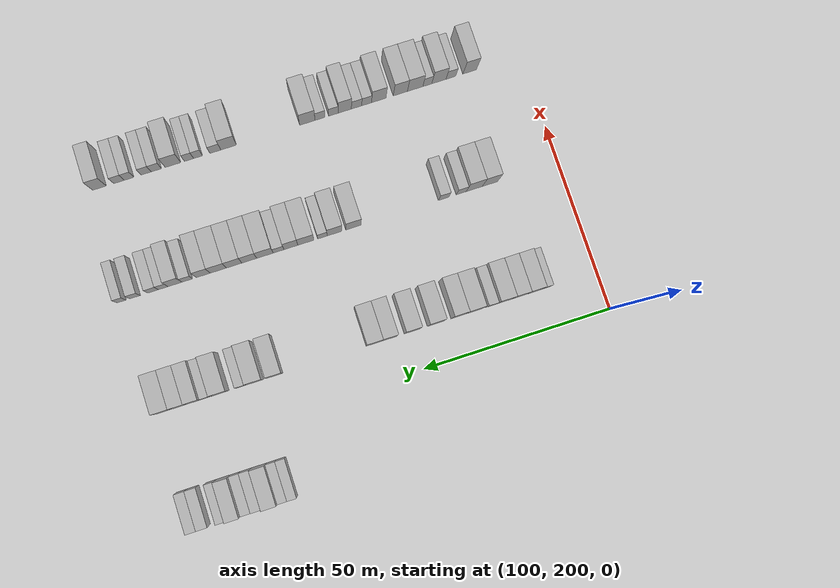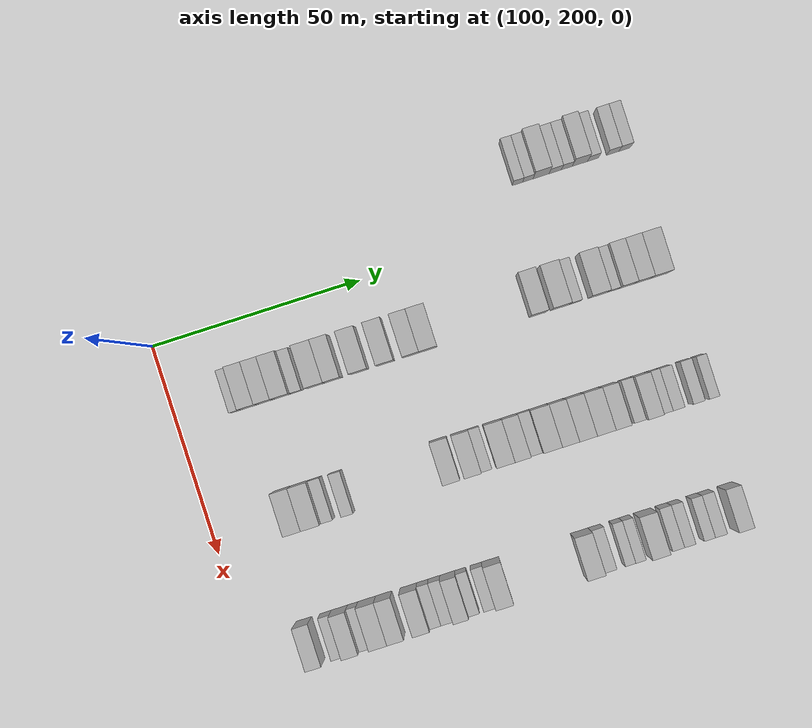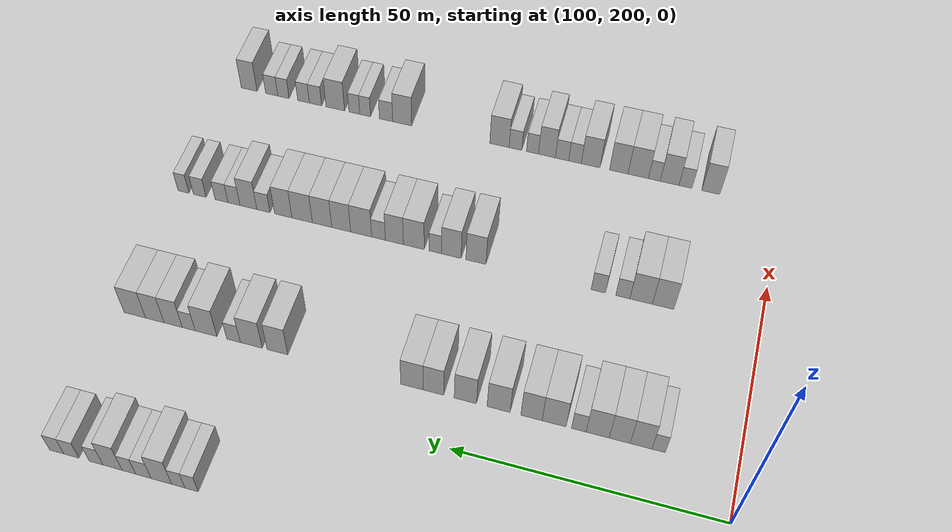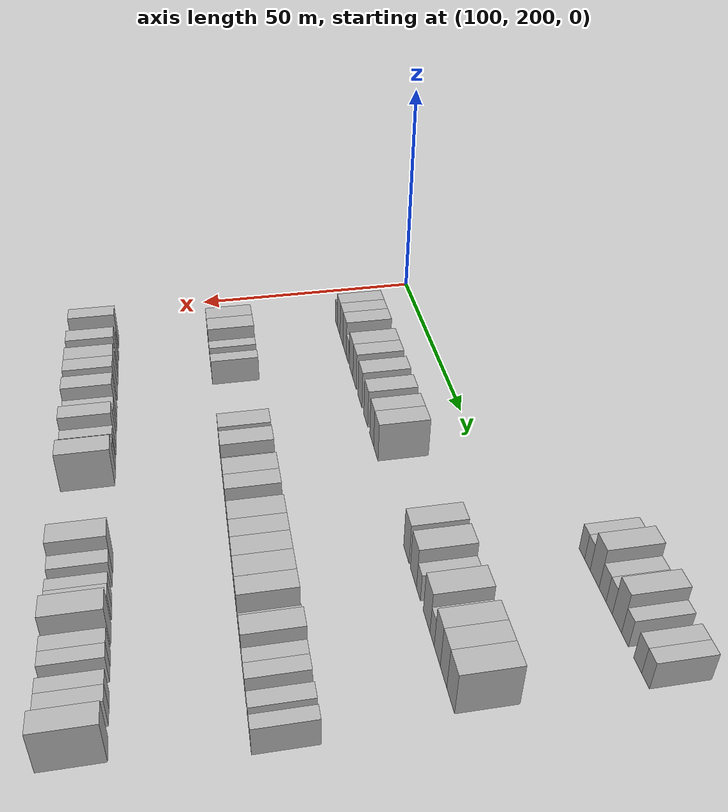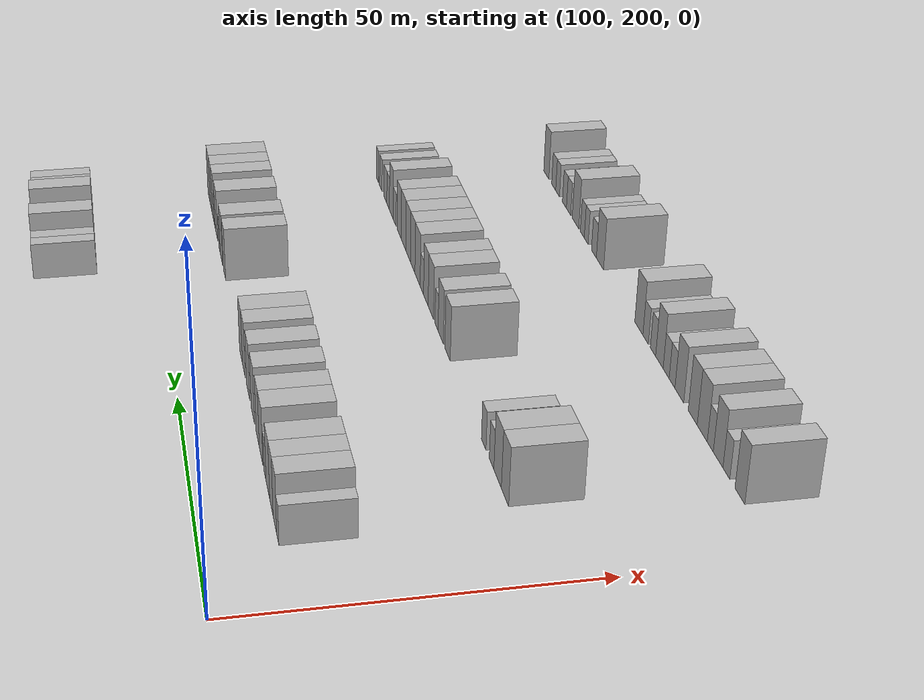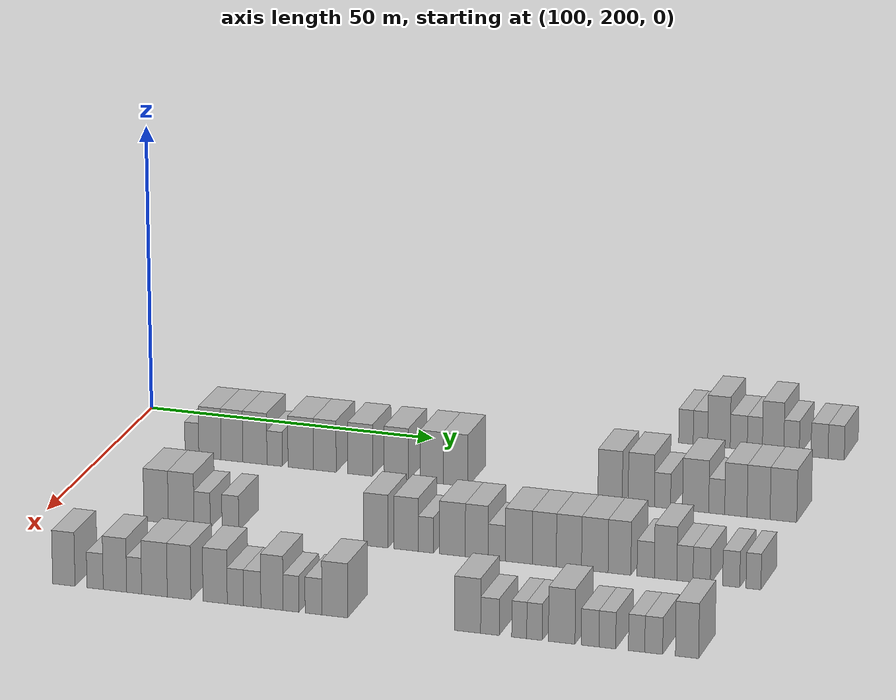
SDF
<sdf version="1.6">
 <world name="default">
  <model name="building_658">
   <static>1</static>
   <pose>85.0000 291.0946 0 0.000000 0.000000 0.000000</pose>
   <link name="link">
    <pose>0 0 3.00 0 0 0</pose>
    <collision name="collision"><geometry><box><size>10.0000 2.4968 6.0000</size></box></geometry></collision>
    <visual name="visual">
     <cast_shadows>0</cast_shadows>
     <geometry><box><size>10.0000 2.4968 6.0000</size></box></geometry>
     <material>
      <script>
       <uri>model://HANNAS_wall/materials/scripts</uri>
       <uri>model://HANNAS_wall/materials/textures</uri>
       <name>vrc/HANNAS_wall</name>
      </script>
     </material>
    </visual>
   </link>
  </model>
  <model name="building_659">
   <static>1</static>
   <pose>85.0000 293.5896 0 0.000000 0.000000 0.000000</pose>
   <link name="link">
    <pose>0 0 3.00 0 0 0</pose>
    <collision name="collision"><geometry><box><size>10.0000 2.4931 6.0000</size></box></geometry></collision>
    <visual name="visual">
     <cast_shadows>0</cast_shadows>
     <geometry><box><size>10.0000 2.4931 6.0000</size></box></geometry>
     <material>
      <script>
       <uri>model://HANNAS_wall/materials/scripts</uri>
       <uri>model://HANNAS_wall/materials/textures</uri>
       <name>vrc/HANNAS_wall</name>
      </script>
     </material>
    </visual>
   </link>
  </model>
  <model name="building_660">
   <static>1</static>
   <pose>85.0000 296.7769 0 0.000000 0.000000 0.000000</pose>
   <link name="link">
    <pose>0 0 4.50 0 0 0</pose>
    <collision name="collision"><geometry><box><size>10.0000 3.8815 9.0000</size></box></geometry></collision>
    <visual name="visual">
     <cast_shadows>0</cast_shadows>
     <geometry><box><size>10.0000 3.8815 9.0000</size></box></geometry>
     <material>
      <script>
       <uri>model://HANNAS_wall/materials/scripts</uri>
       <uri>model://HANNAS_wall/materials/textures</uri>
       <name>vrc/HANNAS_wall</name>
      </script>
     </material>
    </visual>
   </link>
  </model>
  <model name="building_661">
   <static>1</static>
   <pose>85.0000 300.1821 0 0.000000 0.000000 0.000000</pose>
   <link name="link">
    <pose>0 0 3.00 0 0 0</pose>
    <collision name="collision"><geometry><box><size>10.0000 2.9287 6.0000</size></box></geometry></collision>
    <visual name="visual">
     <cast_shadows>0</cast_shadows>
     <geometry><box><size>10.0000 2.9287 6.0000</size></box></geometry>
     <material>
      <script>
       <uri>model://HANNAS_wall/materials/scripts</uri>
       <uri>model://HANNAS_wall/materials/textures</uri>
       <name>vrc/HANNAS_wall</name>
      </script>
     </material>
    </visual>
   </link>
  </model>
  <model name="building_662">
   <static>1</static>
   <pose>85.0000 302.9438 0 0.000000 0.000000 0.000000</pose>
   <link name="link">
    <pose>0 0 3.00 0 0 0</pose>
    <collision name="collision"><geometry><box><size>10.0000 2.5949 6.0000</size></box></geometry></collision>
    <visual name="visual">
     <cast_shadows>0</cast_shadows>
     <geometry><box><size>10.0000 2.5949 6.0000</size></box></geometry>
     <material>
      <script>
       <uri>model://HANNAS_wall/materials/scripts</uri>
       <uri>model://HANNAS_wall/materials/textures</uri>
       <name>vrc/HANNAS_wall</name>
      </script>
     </material>
    </visual>
   </link>
  </model>
  <model name="building_663">
   <static>1</static>
   <pose>85.0000 306.0776 0 0.000000 0.000000 0.000000</pose>
   <link name="link">
    <pose>0 0 4.50 0 0 0</pose>
    <collision name="collision"><geometry><box><size>10.0000 3.6726 9.0000</size></box></geometry></collision>
    <visual name="visual">
     <cast_shadows>0</cast_shadows>
     <geometry><box><size>10.0000 3.6726 9.0000</size></box></geometry>
     <material>
      <script>
       <uri>model://HANNAS_wall/materials/scripts</uri>
       <uri>model://HANNAS_wall/materials/textures</uri>
       <name>vrc/HANNAS_wall</name>
      </script>
     </material>
    </visual>
   </link>
  </model>
  <model name="building_664">
   <static>1</static>
   <pose>85.0000 309.2364 0 0.000000 0.000000 0.000000</pose>
   <link name="link">
    <pose>0 0 3.00 0 0 0</pose>
    <collision name="collision"><geometry><box><size>10.0000 2.6450 6.0000</size></box></geometry></collision>
    <visual name="visual">
     <cast_shadows>0</cast_shadows>
     <geometry><box><size>10.0000 2.6450 6.0000</size></box></geometry>
     <material>
      <script>
       <uri>model://HANNAS_wall/materials/scripts</uri>
       <uri>model://HANNAS_wall/materials/textures</uri>
       <name>vrc/HANNAS_wall</name>
      </script>
     </material>
    </visual>
   </link>
  </model>
  <model name="building_665">
   <static>1</static>
   <pose>85.0000 314.0164 0 0.000000 0.000000 0.000000</pose>
   <link name="link">
    <pose>0 0 3.00 0 0 0</pose>
    <collision name="collision"><geometry><box><size>10.0000 2.9152 6.0000</size></box></geometry></collision>
    <visual name="visual">
     <cast_shadows>0</cast_shadows>
     <geometry><box><size>10.0000 2.9152 6.0000</size></box></geometry>
     <material>
      <script>
       <uri>model://HANNAS_wall/materials/scripts</uri>
       <uri>model://HANNAS_wall/materials/textures</uri>
       <name>vrc/HANNAS_wall</name>
      </script>
     </material>
    </visual>
   </link>
  </model>
  <model name="building_666">
   <static>1</static>
   <pose>85.0000 316.8501 0 0.000000 0.000000 0.000000</pose>
   <link name="link">
    <pose>0 0 3.00 0 0 0</pose>
    <collision name="collision"><geometry><box><size>10.0000 2.7521 6.0000</size></box></geometry></collision>
    <visual name="visual">
     <cast_shadows>0</cast_shadows>
     <geometry><box><size>10.0000 2.7521 6.0000</size></box></geometry>
     <material>
      <script>
       <uri>model://HANNAS_wall/materials/scripts</uri>
       <uri>model://HANNAS_wall/materials/textures</uri>
       <name>vrc/HANNAS_wall</name>
      </script>
     </material>
    </visual>
   </link>
  </model>
  <model name="building_878">
   <static>1</static>
   <pose>115.0000 214.2789 0 0.000000 0.000000 0.000000</pose>
   <link name="link">
    <pose>0 0 3.00 0 0 0</pose>
    <collision name="collision"><geometry><box><size>10.0000 2.4203 6.0000</size></box></geometry></collision>
    <visual name="visual">
     <cast_shadows>0</cast_shadows>
     <geometry><box><size>10.0000 2.4203 6.0000</size></box></geometry>
     <material>
      <script>
       <uri>model://HANNAS_wall/materials/scripts</uri>
       <uri>model://HANNAS_wall/materials/textures</uri>
       <name>vrc/HANNAS_wall</name>
      </script>
     </material>
    </visual>
   </link>
  </model>
  <model name="building_879">
   <static>1</static>
   <pose>115.0000 217.4437 0 0.000000 0.000000 0.000000</pose>
   <link name="link">
    <pose>0 0 4.50 0 0 0</pose>
    <collision name="collision"><geometry><box><size>10.0000 3.9093 9.0000</size></box></geometry></collision>
    <visual name="visual">
     <cast_shadows>0</cast_shadows>
     <geometry><box><size>10.0000 3.9093 9.0000</size></box></geometry>
     <material>
      <script>
       <uri>model://HANNAS_wall/materials/scripts</uri>
       <uri>model://HANNAS_wall/materials/textures</uri>
       <name>vrc/HANNAS_wall</name>
      </script>
     </material>
    </visual>
   </link>
  </model>
  <model name="building_880">
   <static>1</static>
   <pose>115.0000 221.2996 0 0.000000 0.000000 0.000000</pose>
   <link name="link">
    <pose>0 0 4.50 0 0 0</pose>
    <collision name="collision"><geometry><box><size>10.0000 3.8026 9.0000</size></box></geometry></collision>
    <visual name="visual">
     <cast_shadows>0</cast_shadows>
     <geometry><box><size>10.0000 3.8026 9.0000</size></box></geometry>
     <material>
      <script>
       <uri>model://HANNAS_wall/materials/scripts</uri>
       <uri>model://HANNAS_wall/materials/textures</uri>
       <name>vrc/HANNAS_wall</name>
      </script>
     </material>
    </visual>
   </link>
  </model>
  <model name="building_881">
   <static>1</static>
   <pose>115.0000 225.3098 0 0.000000 0.000000 0.000000</pose>
   <link name="link">
    <pose>0 0 4.50 0 0 0</pose>
    <collision name="collision"><geometry><box><size>10.0000 4.2176 9.0000</size></box></geometry></collision>
    <visual name="visual">
     <cast_shadows>0</cast_shadows>
     <geometry><box><size>10.0000 4.2176 9.0000</size></box></geometry>
     <material>
      <script>
       <uri>model://HANNAS_wall/materials/scripts</uri>
       <uri>model://HANNAS_wall/materials/textures</uri>
       <name>vrc/HANNAS_wall</name>
      </script>
     </material>
    </visual>
   </link>
  </model>
  <model name="building_882">
   <static>1</static>
   <pose>115.0000 228.7537 0 0.000000 0.000000 0.000000</pose>
   <link name="link">
    <pose>0 0 3.00 0 0 0</pose>
    <collision name="collision"><geometry><box><size>10.0000 2.6701 6.0000</size></box></geometry></collision>
    <visual name="visual">
     <cast_shadows>0</cast_shadows>
     <geometry><box><size>10.0000 2.6701 6.0000</size></box></geometry>
     <material>
      <script>
       <uri>model://HANNAS_wall/materials/scripts</uri>
       <uri>model://HANNAS_wall/materials/textures</uri>
       <name>vrc/HANNAS_wall</name>
      </script>
     </material>
    </visual>
   </link>
  </model>
  <model name="building_883">
   <static>1</static>
   <pose>115.0000 233.2952 0 0.000000 0.000000 0.000000</pose>
   <link name="link">
    <pose>0 0 4.50 0 0 0</pose>
    <collision name="collision"><geometry><box><size>10.0000 4.4131 9.0000</size></box></geometry></collision>
    <visual name="visual">
     <cast_shadows>0</cast_shadows>
     <geometry><box><size>10.0000 4.4131 9.0000</size></box></geometry>
     <material>
      <script>
       <uri>model://HANNAS_wall/materials/scripts</uri>
       <uri>model://HANNAS_wall/materials/textures</uri>
       <name>vrc/HANNAS_wall</name>
      </script>
     </material>
    </visual>
   </link>
  </model>
  <model name="building_884">
   <static>1</static>
   <pose>115.0000 237.4819 0 0.000000 0.000000 0.000000</pose>
   <link name="link">
    <pose>0 0 4.50 0 0 0</pose>
    <collision name="collision"><geometry><box><size>10.0000 3.9603 9.0000</size></box></geometry></collision>
    <visual name="visual">
     <cast_shadows>0</cast_shadows>
     <geometry><box><size>10.0000 3.9603 9.0000</size></box></geometry>
     <material>
      <script>
       <uri>model://HANNAS_wall/materials/scripts</uri>
       <uri>model://HANNAS_wall/materials/textures</uri>
       <name>vrc/HANNAS_wall</name>
      </script>
     </material>
    </visual>
   </link>
  </model>
  <model name="building_885">
   <static>1</static>
   <pose>115.0000 243.6182 0 0.000000 0.000000 0.000000</pose>
   <link name="link">
    <pose>0 0 4.50 0 0 0</pose>
    <collision name="collision"><geometry><box><size>10.0000 4.3122 9.0000</size></box></geometry></collision>
    <visual name="visual">
     <cast_shadows>0</cast_shadows>
     <geometry><box><size>10.0000 4.3122 9.0000</size></box></geometry>
     <material>
      <script>
       <uri>model://HANNAS_wall/materials/scripts</uri>
       <uri>model://HANNAS_wall/materials/textures</uri>
       <name>vrc/HANNAS_wall</name>
      </script>
     </material>
    </visual>
   </link>
  </model>
  <model name="building_886">
   <static>1</static>
   <pose>115.0000 249.8761 0 0.000000 0.000000 0.000000</pose>
   <link name="link">
    <pose>0 0 4.50 0 0 0</pose>
    <collision name="collision"><geometry><box><size>10.0000 4.2036 9.0000</size></box></geometry></collision>
    <visual name="visual">
     <cast_shadows>0</cast_shadows>
     <geometry><box><size>10.0000 4.2036 9.0000</size></box></geometry>
     <material>
      <script>
       <uri>model://HANNAS_wall/materials/scripts</uri>
       <uri>model://HANNAS_wall/materials/textures</uri>
       <name>vrc/HANNAS_wall</name>
      </script>
     </material>
    </visual>
   </link>
  </model>
  <model name="building_887">
   <static>1</static>
   <pose>115.0000 255.9342 0 0.000000 0.000000 0.000000</pose>
   <link name="link">
    <pose>0 0 4.50 0 0 0</pose>
    <collision name="collision"><geometry><box><size>10.0000 3.9126 9.0000</size></box></geometry></collision>
    <visual name="visual">
     <cast_shadows>0</cast_shadows>
     <geometry><box><size>10.0000 3.9126 9.0000</size></box></geometry>
     <material>
      <script>
       <uri>model://HANNAS_wall/materials/scripts</uri>
       <uri>model://HANNAS_wall/materials/textures</uri>
       <name>vrc/HANNAS_wall</name>
      </script>
     </material>
    </visual>
   </link>
  </model>
  <model name="building_888">
   <static>1</static>
   <pose>115.0000 260.0275 0 0.000000 0.000000 0.000000</pose>
   <link name="link">
    <pose>0 0 4.50 0 0 0</pose>
    <collision name="collision"><geometry><box><size>10.0000 4.2739 9.0000</size></box></geometry></collision>
    <visual name="visual">
     <cast_shadows>0</cast_shadows>
     <geometry><box><size>10.0000 4.2739 9.0000</size></box></geometry>
     <material>
      <script>
       <uri>model://HANNAS_wall/materials/scripts</uri>
       <uri>model://HANNAS_wall/materials/textures</uri>
       <name>vrc/HANNAS_wall</name>
      </script>
     </material>
    </visual>
   </link>
  </model>
  <model name="building_889">
   <static>1</static>
   <pose>115.0000 286.3174 0 0.000000 0.000000 0.000000</pose>
   <link name="link">
    <pose>0 0 4.50 0 0 0</pose>
    <collision name="collision"><geometry><box><size>10.0000 4.1020 9.0000</size></box></geometry></collision>
    <visual name="visual">
     <cast_shadows>0</cast_shadows>
     <geometry><box><size>10.0000 4.1020 9.0000</size></box></geometry>
     <material>
      <script>
       <uri>model://HANNAS_wall/materials/scripts</uri>
       <uri>model://HANNAS_wall/materials/textures</uri>
       <name>vrc/HANNAS_wall</name>
      </script>
     </material>
    </visual>
   </link>
  </model>
  <model name="building_890">
   <static>1</static>
   <pose>115.0000 291.5654 0 0.000000 0.000000 0.000000</pose>
   <link name="link">
    <pose>0 0 4.50 0 0 0</pose>
    <collision name="collision"><geometry><box><size>10.0000 4.3941 9.0000</size></box></geometry></collision>
    <visual name="visual">
     <cast_shadows>0</cast_shadows>
     <geometry><box><size>10.0000 4.3941 9.0000</size></box></geometry>
     <material>
      <script>
       <uri>model://HANNAS_wall/materials/scripts</uri>
       <uri>model://HANNAS_wall/materials/textures</uri>
       <name>vrc/HANNAS_wall</name>
      </script>
     </material>
    </visual>
   </link>
  </model>
  <model name="building_891">
   <static>1</static>
   <pose>115.0000 295.1269 0 0.000000 0.000000 0.000000</pose>
   <link name="link">
    <pose>0 0 3.00 0 0 0</pose>
    <collision name="collision"><geometry><box><size>10.0000 2.7289 6.0000</size></box></geometry></collision>
    <visual name="visual">
     <cast_shadows>0</cast_shadows>
     <geometry><box><size>10.0000 2.7289 6.0000</size></box></geometry>
     <material>
      <script>
       <uri>model://HANNAS_wall/materials/scripts</uri>
       <uri>model://HANNAS_wall/materials/textures</uri>
       <name>vrc/HANNAS_wall</name>
      </script>
     </material>
    </visual>
   </link>
  </model>
  <model name="building_892">
   <static>1</static>
   <pose>115.0000 300.6853 0 0.000000 0.000000 0.000000</pose>
   <link name="link">
    <pose>0 0 4.50 0 0 0</pose>
    <collision name="collision"><geometry><box><size>10.0000 4.3878 9.0000</size></box></geometry></collision>
    <visual name="visual">
     <cast_shadows>0</cast_shadows>
     <geometry><box><size>10.0000 4.3878 9.0000</size></box></geometry>
     <material>
      <script>
       <uri>model://HANNAS_wall/materials/scripts</uri>
       <uri>model://HANNAS_wall/materials/textures</uri>
       <name>vrc/HANNAS_wall</name>
      </script>
     </material>
    </visual>
   </link>
  </model>
  <model name="building_893">
   <static>1</static>
   <pose>115.0000 304.2139 0 0.000000 0.000000 0.000000</pose>
   <link name="link">
    <pose>0 0 3.00 0 0 0</pose>
    <collision name="collision"><geometry><box><size>10.0000 2.6695 6.0000</size></box></geometry></collision>
    <visual name="visual">
     <cast_shadows>0</cast_shadows>
     <geometry><box><size>10.0000 2.6695 6.0000</size></box></geometry>
     <material>
      <script>
       <uri>model://HANNAS_wall/materials/scripts</uri>
       <uri>model://HANNAS_wall/materials/textures</uri>
       <name>vrc/HANNAS_wall</name>
      </script>
     </material>
    </visual>
   </link>
  </model>
  <model name="building_894">
   <static>1</static>
   <pose>115.0000 307.4154 0 0.000000 0.000000 0.000000</pose>
   <link name="link">
    <pose>0 0 4.50 0 0 0</pose>
    <collision name="collision"><geometry><box><size>10.0000 3.7335 9.0000</size></box></geometry></collision>
    <visual name="visual">
     <cast_shadows>0</cast_shadows>
     <geometry><box><size>10.0000 3.7335 9.0000</size></box></geometry>
     <material>
      <script>
       <uri>model://HANNAS_wall/materials/scripts</uri>
       <uri>model://HANNAS_wall/materials/textures</uri>
       <name>vrc/HANNAS_wall</name>
      </script>
     </material>
    </visual>
   </link>
  </model>
  <model name="building_895">
   <static>1</static>
   <pose>115.0000 311.1972 0 0.000000 0.000000 0.000000</pose>
   <link name="link">
    <pose>0 0 4.50 0 0 0</pose>
    <collision name="collision"><geometry><box><size>10.0000 3.8301 9.0000</size></box></geometry></collision>
    <visual name="visual">
     <cast_shadows>0</cast_shadows>
     <geometry><box><size>10.0000 3.8301 9.0000</size></box></geometry>
     <material>
      <script>
       <uri>model://HANNAS_wall/materials/scripts</uri>
       <uri>model://HANNAS_wall/materials/textures</uri>
       <name>vrc/HANNAS_wall</name>
      </script>
     </material>
    </visual>
   </link>
  </model>
  <model name="building_896">
   <static>1</static>
   <pose>115.0000 315.3246 0 0.000000 0.000000 0.000000</pose>
   <link name="link">
    <pose>0 0 4.50 0 0 0</pose>
    <collision name="collision"><geometry><box><size>10.0000 4.4245 9.0000</size></box></geometry></collision>
    <visual name="visual">
     <cast_shadows>0</cast_shadows>
     <geometry><box><size>10.0000 4.4245 9.0000</size></box></geometry>
     <material>
      <script>
       <uri>model://HANNAS_wall/materials/scripts</uri>
       <uri>model://HANNAS_wall/materials/textures</uri>
       <name>vrc/HANNAS_wall</name>
      </script>
     </material>
    </visual>
   </link>
  </model>
  <model name="building_1100">
   <static>1</static>
   <pose>145.0000 218.7010 0 0.000000 0.000000 0.000000</pose>
   <link name="link">
    <pose>0 0 4.50 0 0 0</pose>
    <collision name="collision"><geometry><box><size>10.0000 4.1737 9.0000</size></box></geometry></collision>
    <visual name="visual">
     <cast_shadows>0</cast_shadows>
     <geometry><box><size>10.0000 4.1737 9.0000</size></box></geometry>
     <material>
      <script>
       <uri>model://HANNAS_wall/materials/scripts</uri>
       <uri>model://HANNAS_wall/materials/textures</uri>
       <name>vrc/HANNAS_wall</name>
      </script>
     </material>
    </visual>
   </link>
  </model>
  <model name="building_1101">
   <static>1</static>
   <pose>145.0000 222.9799 0 0.000000 0.000000 0.000000</pose>
   <link name="link">
    <pose>0 0 4.50 0 0 0</pose>
    <collision name="collision"><geometry><box><size>10.0000 4.3841 9.0000</size></box></geometry></collision>
    <visual name="visual">
     <cast_shadows>0</cast_shadows>
     <geometry><box><size>10.0000 4.3841 9.0000</size></box></geometry>
     <material>
      <script>
       <uri>model://HANNAS_wall/materials/scripts</uri>
       <uri>model://HANNAS_wall/materials/textures</uri>
       <name>vrc/HANNAS_wall</name>
      </script>
     </material>
    </visual>
   </link>
  </model>
  <model name="building_1102">
   <static>1</static>
   <pose>145.0000 226.5557 0 0.000000 0.000000 0.000000</pose>
   <link name="link">
    <pose>0 0 3.00 0 0 0</pose>
    <collision name="collision"><geometry><box><size>10.0000 2.7677 6.0000</size></box></geometry></collision>
    <visual name="visual">
     <cast_shadows>0</cast_shadows>
     <geometry><box><size>10.0000 2.7677 6.0000</size></box></geometry>
     <material>
      <script>
       <uri>model://HANNAS_wall/materials/scripts</uri>
       <uri>model://HANNAS_wall/materials/textures</uri>
       <name>vrc/HANNAS_wall</name>
      </script>
     </material>
    </visual>
   </link>
  </model>
  <model name="building_1103">
   <static>1</static>
   <pose>145.0000 231.3560 0 0.000000 0.000000 0.000000</pose>
   <link name="link">
    <pose>0 0 3.00 0 0 0</pose>
    <collision name="collision"><geometry><box><size>10.0000 2.8328 6.0000</size></box></geometry></collision>
    <visual name="visual">
     <cast_shadows>0</cast_shadows>
     <geometry><box><size>10.0000 2.8328 6.0000</size></box></geometry>
     <material>
      <script>
       <uri>model://HANNAS_wall/materials/scripts</uri>
       <uri>model://HANNAS_wall/materials/textures</uri>
       <name>vrc/HANNAS_wall</name>
      </script>
     </material>
    </visual>
   </link>
  </model>
  <model name="building_1104">
   <static>1</static>
   <pose>145.0000 255.8917 0 0.000000 0.000000 0.000000</pose>
   <link name="link">
    <pose>0 0 4.50 0 0 0</pose>
    <collision name="collision"><geometry><box><size>10.0000 4.0796 9.0000</size></box></geometry></collision>
    <visual name="visual">
     <cast_shadows>0</cast_shadows>
     <geometry><box><size>10.0000 4.0796 9.0000</size></box></geometry>
     <material>
      <script>
       <uri>model://HANNAS_wall/materials/scripts</uri>
       <uri>model://HANNAS_wall/materials/textures</uri>
       <name>vrc/HANNAS_wall</name>
      </script>
     </material>
    </visual>
   </link>
  </model>
  <model name="building_1105">
   <static>1</static>
   <pose>145.0000 260.9454 0 0.000000 0.000000 0.000000</pose>
   <link name="link">
    <pose>0 0 4.50 0 0 0</pose>
    <collision name="collision"><geometry><box><size>10.0000 4.0277 9.0000</size></box></geometry></collision>
    <visual name="visual">
     <cast_shadows>0</cast_shadows>
     <geometry><box><size>10.0000 4.0277 9.0000</size></box></geometry>
     <material>
      <script>
       <uri>model://HANNAS_wall/materials/scripts</uri>
       <uri>model://HANNAS_wall/materials/textures</uri>
       <name>vrc/HANNAS_wall</name>
      </script>
     </material>
    </visual>
   </link>
  </model>
  <model name="building_1106">
   <static>1</static>
   <pose>145.0000 264.2390 0 0.000000 0.000000 0.000000</pose>
   <link name="link">
    <pose>0 0 3.00 0 0 0</pose>
    <collision name="collision"><geometry><box><size>10.0000 2.5595 6.0000</size></box></geometry></collision>
    <visual name="visual">
     <cast_shadows>0</cast_shadows>
     <geometry><box><size>10.0000 2.5595 6.0000</size></box></geometry>
     <material>
      <script>
       <uri>model://HANNAS_wall/materials/scripts</uri>
       <uri>model://HANNAS_wall/materials/textures</uri>
       <name>vrc/HANNAS_wall</name>
      </script>
     </material>
    </visual>
   </link>
  </model>
  <model name="building_1107">
   <static>1</static>
   <pose>145.0000 268.6711 0 0.000000 0.000000 0.000000</pose>
   <link name="link">
    <pose>0 0 4.50 0 0 0</pose>
    <collision name="collision"><geometry><box><size>10.0000 4.3046 9.0000</size></box></geometry></collision>
    <visual name="visual">
     <cast_shadows>0</cast_shadows>
     <geometry><box><size>10.0000 4.3046 9.0000</size></box></geometry>
     <material>
      <script>
       <uri>model://HANNAS_wall/materials/scripts</uri>
       <uri>model://HANNAS_wall/materials/textures</uri>
       <name>vrc/HANNAS_wall</name>
      </script>
     </material>
    </visual>
   </link>
  </model>
  <model name="building_1108">
   <static>1</static>
   <pose>145.0000 272.6972 0 0.000000 0.000000 0.000000</pose>
   <link name="link">
    <pose>0 0 4.50 0 0 0</pose>
    <collision name="collision"><geometry><box><size>10.0000 3.7477 9.0000</size></box></geometry></collision>
    <visual name="visual">
     <cast_shadows>0</cast_shadows>
     <geometry><box><size>10.0000 3.7477 9.0000</size></box></geometry>
     <material>
      <script>
       <uri>model://HANNAS_wall/materials/scripts</uri>
       <uri>model://HANNAS_wall/materials/textures</uri>
       <name>vrc/HANNAS_wall</name>
      </script>
     </material>
    </visual>
   </link>
  </model>
  <model name="building_1109">
   <static>1</static>
   <pose>145.0000 276.0104 0 0.000000 0.000000 0.000000</pose>
   <link name="link">
    <pose>0 0 3.00 0 0 0</pose>
    <collision name="collision"><geometry><box><size>10.0000 2.8787 6.0000</size></box></geometry></collision>
    <visual name="visual">
     <cast_shadows>0</cast_shadows>
     <geometry><box><size>10.0000 2.8787 6.0000</size></box></geometry>
     <material>
      <script>
       <uri>model://HANNAS_wall/materials/scripts</uri>
       <uri>model://HANNAS_wall/materials/textures</uri>
       <name>vrc/HANNAS_wall</name>
      </script>
     </material>
    </visual>
   </link>
  </model>
  <model name="building_1110">
   <static>1</static>
   <pose>145.0000 279.6604 0 0.000000 0.000000 0.000000</pose>
   <link name="link">
    <pose>0 0 4.50 0 0 0</pose>
    <collision name="collision"><geometry><box><size>10.0000 4.4212 9.0000</size></box></geometry></collision>
    <visual name="visual">
     <cast_shadows>0</cast_shadows>
     <geometry><box><size>10.0000 4.4212 9.0000</size></box></geometry>
     <material>
      <script>
       <uri>model://HANNAS_wall/materials/scripts</uri>
       <uri>model://HANNAS_wall/materials/textures</uri>
       <name>vrc/HANNAS_wall</name>
      </script>
     </material>
    </visual>
   </link>
  </model>
  <model name="building_1111">
   <static>1</static>
   <pose>145.0000 283.8631 0 0.000000 0.000000 0.000000</pose>
   <link name="link">
    <pose>0 0 4.50 0 0 0</pose>
    <collision name="collision"><geometry><box><size>10.0000 3.9842 9.0000</size></box></geometry></collision>
    <visual name="visual">
     <cast_shadows>0</cast_shadows>
     <geometry><box><size>10.0000 3.9842 9.0000</size></box></geometry>
     <material>
      <script>
       <uri>model://HANNAS_wall/materials/scripts</uri>
       <uri>model://HANNAS_wall/materials/textures</uri>
       <name>vrc/HANNAS_wall</name>
      </script>
     </material>
    </visual>
   </link>
  </model>
  <model name="building_1112">
   <static>1</static>
   <pose>145.0000 287.9239 0 0.000000 0.000000 0.000000</pose>
   <link name="link">
    <pose>0 0 4.50 0 0 0</pose>
    <collision name="collision"><geometry><box><size>10.0000 4.1373 9.0000</size></box></geometry></collision>
    <visual name="visual">
     <cast_shadows>0</cast_shadows>
     <geometry><box><size>10.0000 4.1373 9.0000</size></box></geometry>
     <material>
      <script>
       <uri>model://HANNAS_wall/materials/scripts</uri>
       <uri>model://HANNAS_wall/materials/textures</uri>
       <name>vrc/HANNAS_wall</name>
      </script>
     </material>
    </visual>
   </link>
  </model>
  <model name="building_1113">
   <static>1</static>
   <pose>145.0000 292.1672 0 0.000000 0.000000 0.000000</pose>
   <link name="link">
    <pose>0 0 4.50 0 0 0</pose>
    <collision name="collision"><geometry><box><size>10.0000 4.3494 9.0000</size></box></geometry></collision>
    <visual name="visual">
     <cast_shadows>0</cast_shadows>
     <geometry><box><size>10.0000 4.3494 9.0000</size></box></geometry>
     <material>
      <script>
       <uri>model://HANNAS_wall/materials/scripts</uri>
       <uri>model://HANNAS_wall/materials/textures</uri>
       <name>vrc/HANNAS_wall</name>
      </script>
     </material>
    </visual>
   </link>
  </model>
  <model name="building_1114">
   <static>1</static>
   <pose>145.0000 296.2080 0 0.000000 0.000000 0.000000</pose>
   <link name="link">
    <pose>0 0 4.50 0 0 0</pose>
    <collision name="collision"><geometry><box><size>10.0000 3.7321 9.0000</size></box></geometry></collision>
    <visual name="visual">
     <cast_shadows>0</cast_shadows>
     <geometry><box><size>10.0000 3.7321 9.0000</size></box></geometry>
     <material>
      <script>
       <uri>model://HANNAS_wall/materials/scripts</uri>
       <uri>model://HANNAS_wall/materials/textures</uri>
       <name>vrc/HANNAS_wall</name>
      </script>
     </material>
    </visual>
   </link>
  </model>
  <model name="building_1115">
   <static>1</static>
   <pose>145.0000 300.4876 0 0.000000 0.000000 0.000000</pose>
   <link name="link">
    <pose>0 0 3.00 0 0 0</pose>
    <collision name="collision"><geometry><box><size>10.0000 2.8271 6.0000</size></box></geometry></collision>
    <visual name="visual">
     <cast_shadows>0</cast_shadows>
     <geometry><box><size>10.0000 2.8271 6.0000</size></box></geometry>
     <material>
      <script>
       <uri>model://HANNAS_wall/materials/scripts</uri>
       <uri>model://HANNAS_wall/materials/textures</uri>
       <name>vrc/HANNAS_wall</name>
      </script>
     </material>
    </visual>
   </link>
  </model>
  <model name="building_1116">
   <static>1</static>
   <pose>145.0000 303.7381 0 0.000000 0.000000 0.000000</pose>
   <link name="link">
    <pose>0 0 4.50 0 0 0</pose>
    <collision name="collision"><geometry><box><size>10.0000 3.6739 9.0000</size></box></geometry></collision>
    <visual name="visual">
     <cast_shadows>0</cast_shadows>
     <geometry><box><size>10.0000 3.6739 9.0000</size></box></geometry>
     <material>
      <script>
       <uri>model://HANNAS_wall/materials/scripts</uri>
       <uri>model://HANNAS_wall/materials/textures</uri>
       <name>vrc/HANNAS_wall</name>
      </script>
     </material>
    </visual>
   </link>
  </model>
  <model name="building_1117">
   <static>1</static>
   <pose>145.0000 306.8825 0 0.000000 0.000000 0.000000</pose>
   <link name="link">
    <pose>0 0 3.00 0 0 0</pose>
    <collision name="collision"><geometry><box><size>10.0000 2.6150 6.0000</size></box></geometry></collision>
    <visual name="visual">
     <cast_shadows>0</cast_shadows>
     <geometry><box><size>10.0000 2.6150 6.0000</size></box></geometry>
     <material>
      <script>
       <uri>model://HANNAS_wall/materials/scripts</uri>
       <uri>model://HANNAS_wall/materials/textures</uri>
       <name>vrc/HANNAS_wall</name>
      </script>
     </material>
    </visual>
   </link>
  </model>
  <model name="building_1118">
   <static>1</static>
   <pose>145.0000 309.5944 0 0.000000 0.000000 0.000000</pose>
   <link name="link">
    <pose>0 0 3.00 0 0 0</pose>
    <collision name="collision"><geometry><box><size>10.0000 2.8089 6.0000</size></box></geometry></collision>
    <visual name="visual">
     <cast_shadows>0</cast_shadows>
     <geometry><box><size>10.0000 2.8089 6.0000</size></box></geometry>
     <material>
      <script>
       <uri>model://HANNAS_wall/materials/scripts</uri>
       <uri>model://HANNAS_wall/materials/textures</uri>
       <name>vrc/HANNAS_wall</name>
      </script>
     </material>
    </visual>
   </link>
  </model>
  <model name="building_1119">
   <static>1</static>
   <pose>145.0000 314.3833 0 0.000000 0.000000 0.000000</pose>
   <link name="link">
    <pose>0 0 3.00 0 0 0</pose>
    <collision name="collision"><geometry><box><size>10.0000 2.7689 6.0000</size></box></geometry></collision>
    <visual name="visual">
     <cast_shadows>0</cast_shadows>
     <geometry><box><size>10.0000 2.7689 6.0000</size></box></geometry>
     <material>
      <script>
       <uri>model://HANNAS_wall/materials/scripts</uri>
       <uri>model://HANNAS_wall/materials/textures</uri>
       <name>vrc/HANNAS_wall</name>
      </script>
     </material>
    </visual>
   </link>
  </model>
  <model name="building_1120">
   <static>1</static>
   <pose>145.0000 317.9766 0 0.000000 0.000000 0.000000</pose>
   <link name="link">
    <pose>0 0 3.00 0 0 0</pose>
    <collision name="collision"><geometry><box><size>10.0000 2.4177 6.0000</size></box></geometry></collision>
    <visual name="visual">
     <cast_shadows>0</cast_shadows>
     <geometry><box><size>10.0000 2.4177 6.0000</size></box></geometry>
     <material>
      <script>
       <uri>model://HANNAS_wall/materials/scripts</uri>
       <uri>model://HANNAS_wall/materials/textures</uri>
       <name>vrc/HANNAS_wall</name>
      </script>
     </material>
    </visual>
   </link>
  </model>
  <model name="building_1315">
   <static>1</static>
   <pose>175.0000 214.0712 0 0.000000 0.000000 0.000000</pose>
   <link name="link">
    <pose>0 0 4.50 0 0 0</pose>
    <collision name="collision"><geometry><box><size>10.0000 3.7381 9.0000</size></box></geometry></collision>
    <visual name="visual">
     <cast_shadows>0</cast_shadows>
     <geometry><box><size>10.0000 3.7381 9.0000</size></box></geometry>
     <material>
      <script>
       <uri>model://HANNAS_wall/materials/scripts</uri>
       <uri>model://HANNAS_wall/materials/textures</uri>
       <name>vrc/HANNAS_wall</name>
      </script>
     </material>
    </visual>
   </link>
  </model>
  <model name="building_1316">
   <static>1</static>
   <pose>175.0000 219.2925 0 0.000000 0.000000 0.000000</pose>
   <link name="link">
    <pose>0 0 3.00 0 0 0</pose>
    <collision name="collision"><geometry><box><size>10.0000 2.7045 6.0000</size></box></geometry></collision>
    <visual name="visual">
     <cast_shadows>0</cast_shadows>
     <geometry><box><size>10.0000 2.7045 6.0000</size></box></geometry>
     <material>
      <script>
       <uri>model://HANNAS_wall/materials/scripts</uri>
       <uri>model://HANNAS_wall/materials/textures</uri>
       <name>vrc/HANNAS_wall</name>
      </script>
     </material>
    </visual>
   </link>
  </model>
  <model name="building_1317">
   <static>1</static>
   <pose>175.0000 222.5979 0 0.000000 0.000000 0.000000</pose>
   <link name="link">
    <pose>0 0 4.50 0 0 0</pose>
    <collision name="collision"><geometry><box><size>10.0000 3.9062 9.0000</size></box></geometry></collision>
    <visual name="visual">
     <cast_shadows>0</cast_shadows>
     <geometry><box><size>10.0000 3.9062 9.0000</size></box></geometry>
     <material>
      <script>
       <uri>model://HANNAS_wall/materials/scripts</uri>
       <uri>model://HANNAS_wall/materials/textures</uri>
       <name>vrc/HANNAS_wall</name>
      </script>
     </material>
    </visual>
   </link>
  </model>
  <model name="building_1318">
   <static>1</static>
   <pose>175.0000 225.7888 0 0.000000 0.000000 0.000000</pose>
   <link name="link">
    <pose>0 0 3.00 0 0 0</pose>
    <collision name="collision"><geometry><box><size>10.0000 2.4756 6.0000</size></box></geometry></collision>
    <visual name="visual">
     <cast_shadows>0</cast_shadows>
     <geometry><box><size>10.0000 2.4756 6.0000</size></box></geometry>
     <material>
      <script>
       <uri>model://HANNAS_wall/materials/scripts</uri>
       <uri>model://HANNAS_wall/materials/textures</uri>
       <name>vrc/HANNAS_wall</name>
      </script>
     </material>
    </visual>
   </link>
  </model>
  <model name="building_1319">
   <static>1</static>
   <pose>175.0000 229.1547 0 0.000000 0.000000 0.000000</pose>
   <link name="link">
    <pose>0 0 4.50 0 0 0</pose>
    <collision name="collision"><geometry><box><size>10.0000 4.2563 9.0000</size></box></geometry></collision>
    <visual name="visual">
     <cast_shadows>0</cast_shadows>
     <geometry><box><size>10.0000 4.2563 9.0000</size></box></geometry>
     <material>
      <script>
       <uri>model://HANNAS_wall/materials/scripts</uri>
       <uri>model://HANNAS_wall/materials/textures</uri>
       <name>vrc/HANNAS_wall</name>
      </script>
     </material>
    </visual>
   </link>
  </model>
  <model name="building_1320">
   <static>1</static>
   <pose>175.0000 233.2361 0 0.000000 0.000000 0.000000</pose>
   <link name="link">
    <pose>0 0 4.50 0 0 0</pose>
    <collision name="collision"><geometry><box><size>10.0000 3.9065 9.0000</size></box></geometry></collision>
    <visual name="visual">
     <cast_shadows>0</cast_shadows>
     <geometry><box><size>10.0000 3.9065 9.0000</size></box></geometry>
     <material>
      <script>
       <uri>model://HANNAS_wall/materials/scripts</uri>
       <uri>model://HANNAS_wall/materials/textures</uri>
       <name>vrc/HANNAS_wall</name>
      </script>
     </material>
    </visual>
   </link>
  </model>
  <model name="building_1321">
   <static>1</static>
   <pose>175.0000 239.1834 0 0.000000 0.000000 0.000000</pose>
   <link name="link">
    <pose>0 0 4.50 0 0 0</pose>
    <collision name="collision"><geometry><box><size>10.0000 3.9881 9.0000</size></box></geometry></collision>
    <visual name="visual">
     <cast_shadows>0</cast_shadows>
     <geometry><box><size>10.0000 3.9881 9.0000</size></box></geometry>
     <material>
      <script>
       <uri>model://HANNAS_wall/materials/scripts</uri>
       <uri>model://HANNAS_wall/materials/textures</uri>
       <name>vrc/HANNAS_wall</name>
      </script>
     </material>
    </visual>
   </link>
  </model>
  <model name="building_1322">
   <static>1</static>
   <pose>175.0000 242.5224 0 0.000000 0.000000 0.000000</pose>
   <link name="link">
    <pose>0 0 3.00 0 0 0</pose>
    <collision name="collision"><geometry><box><size>10.0000 2.6898 6.0000</size></box></geometry></collision>
    <visual name="visual">
     <cast_shadows>0</cast_shadows>
     <geometry><box><size>10.0000 2.6898 6.0000</size></box></geometry>
     <material>
      <script>
       <uri>model://HANNAS_wall/materials/scripts</uri>
       <uri>model://HANNAS_wall/materials/textures</uri>
       <name>vrc/HANNAS_wall</name>
      </script>
     </material>
    </visual>
   </link>
  </model>
  <model name="building_1323">
   <static>1</static>
   <pose>175.0000 245.2888 0 0.000000 0.000000 0.000000</pose>
   <link name="link">
    <pose>0 0 3.00 0 0 0</pose>
    <collision name="collision"><geometry><box><size>10.0000 2.8431 6.0000</size></box></geometry></collision>
    <visual name="visual">
     <cast_shadows>0</cast_shadows>
     <geometry><box><size>10.0000 2.8431 6.0000</size></box></geometry>
     <material>
      <script>
       <uri>model://HANNAS_wall/materials/scripts</uri>
       <uri>model://HANNAS_wall/materials/textures</uri>
       <name>vrc/HANNAS_wall</name>
      </script>
     </material>
    </visual>
   </link>
  </model>
  <model name="building_1324">
   <static>1</static>
   <pose>175.0000 248.5250 0 0.000000 0.000000 0.000000</pose>
   <link name="link">
    <pose>0 0 4.50 0 0 0</pose>
    <collision name="collision"><geometry><box><size>10.0000 3.6291 9.0000</size></box></geometry></collision>
    <visual name="visual">
     <cast_shadows>0</cast_shadows>
     <geometry><box><size>10.0000 3.6291 9.0000</size></box></geometry>
     <material>
      <script>
       <uri>model://HANNAS_wall/materials/scripts</uri>
       <uri>model://HANNAS_wall/materials/textures</uri>
       <name>vrc/HANNAS_wall</name>
      </script>
     </material>
    </visual>
   </link>
  </model>
  <model name="building_1325">
   <static>1</static>
   <pose>175.0000 251.6419 0 0.000000 0.000000 0.000000</pose>
   <link name="link">
    <pose>0 0 3.00 0 0 0</pose>
    <collision name="collision"><geometry><box><size>10.0000 2.6047 6.0000</size></box></geometry></collision>
    <visual name="visual">
     <cast_shadows>0</cast_shadows>
     <geometry><box><size>10.0000 2.6047 6.0000</size></box></geometry>
     <material>
      <script>
       <uri>model://HANNAS_wall/materials/scripts</uri>
       <uri>model://HANNAS_wall/materials/textures</uri>
       <name>vrc/HANNAS_wall</name>
      </script>
     </material>
    </visual>
   </link>
  </model>
  <model name="building_1326">
   <static>1</static>
   <pose>175.0000 255.3133 0 0.000000 0.000000 0.000000</pose>
   <link name="link">
    <pose>0 0 3.00 0 0 0</pose>
    <collision name="collision"><geometry><box><size>10.0000 2.7381 6.0000</size></box></geometry></collision>
    <visual name="visual">
     <cast_shadows>0</cast_shadows>
     <geometry><box><size>10.0000 2.7381 6.0000</size></box></geometry>
     <material>
      <script>
       <uri>model://HANNAS_wall/materials/scripts</uri>
       <uri>model://HANNAS_wall/materials/textures</uri>
       <name>vrc/HANNAS_wall</name>
      </script>
     </material>
    </visual>
   </link>
  </model>
  <model name="building_1327">
   <static>1</static>
   <pose>175.0000 258.7859 0 0.000000 0.000000 0.000000</pose>
   <link name="link">
    <pose>0 0 4.50 0 0 0</pose>
    <collision name="collision"><geometry><box><size>10.0000 4.2072 9.0000</size></box></geometry></collision>
    <visual name="visual">
     <cast_shadows>0</cast_shadows>
     <geometry><box><size>10.0000 4.2072 9.0000</size></box></geometry>
     <material>
      <script>
       <uri>model://HANNAS_wall/materials/scripts</uri>
       <uri>model://HANNAS_wall/materials/textures</uri>
       <name>vrc/HANNAS_wall</name>
      </script>
     </material>
    </visual>
   </link>
  </model>
  <model name="building_1328">
   <static>1</static>
   <pose>175.0000 280.2505 0 0.000000 0.000000 0.000000</pose>
   <link name="link">
    <pose>0 0 4.50 0 0 0</pose>
    <collision name="collision"><geometry><box><size>10.0000 4.2406 9.0000</size></box></geometry></collision>
    <visual name="visual">
     <cast_shadows>0</cast_shadows>
     <geometry><box><size>10.0000 4.2406 9.0000</size></box></geometry>
     <material>
      <script>
       <uri>model://HANNAS_wall/materials/scripts</uri>
       <uri>model://HANNAS_wall/materials/textures</uri>
       <name>vrc/HANNAS_wall</name>
      </script>
     </material>
    </visual>
   </link>
  </model>
  <model name="building_1329">
   <static>1</static>
   <pose>175.0000 283.8591 0 0.000000 0.000000 0.000000</pose>
   <link name="link">
    <pose>0 0 3.00 0 0 0</pose>
    <collision name="collision"><geometry><box><size>10.0000 2.9765 6.0000</size></box></geometry></collision>
    <visual name="visual">
     <cast_shadows>0</cast_shadows>
     <geometry><box><size>10.0000 2.9765 6.0000</size></box></geometry>
     <material>
      <script>
       <uri>model://HANNAS_wall/materials/scripts</uri>
       <uri>model://HANNAS_wall/materials/textures</uri>
       <name>vrc/HANNAS_wall</name>
      </script>
     </material>
    </visual>
   </link>
  </model>
  <model name="building_1330">
   <static>1</static>
   <pose>175.0000 288.5564 0 0.000000 0.000000 0.000000</pose>
   <link name="link">
    <pose>0 0 3.00 0 0 0</pose>
    <collision name="collision"><geometry><box><size>10.0000 2.4182 6.0000</size></box></geometry></collision>
    <visual name="visual">
     <cast_shadows>0</cast_shadows>
     <geometry><box><size>10.0000 2.4182 6.0000</size></box></geometry>
     <material>
      <script>
       <uri>model://HANNAS_wall/materials/scripts</uri>
       <uri>model://HANNAS_wall/materials/textures</uri>
       <name>vrc/HANNAS_wall</name>
      </script>
     </material>
    </visual>
   </link>
  </model>
  <model name="building_1331">
   <static>1</static>
   <pose>175.0000 291.0004 0 0.000000 0.000000 0.000000</pose>
   <link name="link">
    <pose>0 0 3.00 0 0 0</pose>
    <collision name="collision"><geometry><box><size>10.0000 2.4698 6.0000</size></box></geometry></collision>
    <visual name="visual">
     <cast_shadows>0</cast_shadows>
     <geometry><box><size>10.0000 2.4698 6.0000</size></box></geometry>
     <material>
      <script>
       <uri>model://HANNAS_wall/materials/scripts</uri>
       <uri>model://HANNAS_wall/materials/textures</uri>
       <name>vrc/HANNAS_wall</name>
      </script>
     </material>
    </visual>
   </link>
  </model>
  <model name="building_1332">
   <static>1</static>
   <pose>175.0000 295.3449 0 0.000000 0.000000 0.000000</pose>
   <link name="link">
    <pose>0 0 4.50 0 0 0</pose>
    <collision name="collision"><geometry><box><size>10.0000 4.2193 9.0000</size></box></geometry></collision>
    <visual name="visual">
     <cast_shadows>0</cast_shadows>
     <geometry><box><size>10.0000 4.2193 9.0000</size></box></geometry>
     <material>
      <script>
       <uri>model://HANNAS_wall/materials/scripts</uri>
       <uri>model://HANNAS_wall/materials/textures</uri>
       <name>vrc/HANNAS_wall</name>
      </script>
     </material>
    </visual>
   </link>
  </model>
  <model name="building_1333">
   <static>1</static>
   <pose>175.0000 299.8598 0 0.000000 0.000000 0.000000</pose>
   <link name="link">
    <pose>0 0 3.00 0 0 0</pose>
    <collision name="collision"><geometry><box><size>10.0000 2.8104 6.0000</size></box></geometry></collision>
    <visual name="visual">
     <cast_shadows>0</cast_shadows>
     <geometry><box><size>10.0000 2.8104 6.0000</size></box></geometry>
     <material>
      <script>
       <uri>model://HANNAS_wall/materials/scripts</uri>
       <uri>model://HANNAS_wall/materials/textures</uri>
       <name>vrc/HANNAS_wall</name>
      </script>
     </material>
    </visual>
   </link>
  </model>
  <model name="building_1334">
   <static>1</static>
   <pose>175.0000 302.5982 0 0.000000 0.000000 0.000000</pose>
   <link name="link">
    <pose>0 0 3.00 0 0 0</pose>
    <collision name="collision"><geometry><box><size>10.0000 2.6664 6.0000</size></box></geometry></collision>
    <visual name="visual">
     <cast_shadows>0</cast_shadows>
     <geometry><box><size>10.0000 2.6664 6.0000</size></box></geometry>
     <material>
      <script>
       <uri>model://HANNAS_wall/materials/scripts</uri>
       <uri>model://HANNAS_wall/materials/textures</uri>
       <name>vrc/HANNAS_wall</name>
      </script>
     </material>
    </visual>
   </link>
  </model>
  <model name="building_1335">
   <static>1</static>
   <pose>175.0000 307.2278 0 0.000000 0.000000 0.000000</pose>
   <link name="link">
    <pose>0 0 3.00 0 0 0</pose>
    <collision name="collision"><geometry><box><size>10.0000 2.5928 6.0000</size></box></geometry></collision>
    <visual name="visual">
     <cast_shadows>0</cast_shadows>
     <geometry><box><size>10.0000 2.5928 6.0000</size></box></geometry>
     <material>
      <script>
       <uri>model://HANNAS_wall/materials/scripts</uri>
       <uri>model://HANNAS_wall/materials/textures</uri>
       <name>vrc/HANNAS_wall</name>
      </script>
     </material>
    </visual>
   </link>
  </model>
  <model name="building_1336">
   <static>1</static>
   <pose>175.0000 309.9376 0 0.000000 0.000000 0.000000</pose>
   <link name="link">
    <pose>0 0 3.00 0 0 0</pose>
    <collision name="collision"><geometry><box><size>10.0000 2.8269 6.0000</size></box></geometry></collision>
    <visual name="visual">
     <cast_shadows>0</cast_shadows>
     <geometry><box><size>10.0000 2.8269 6.0000</size></box></geometry>
     <material>
      <script>
       <uri>model://HANNAS_wall/materials/scripts</uri>
       <uri>model://HANNAS_wall/materials/textures</uri>
       <name>vrc/HANNAS_wall</name>
      </script>
     </material>
    </visual>
   </link>
  </model>
  <model name="building_1337">
   <static>1</static>
   <pose>175.0000 315.1811 0 0.000000 0.000000 0.000000</pose>
   <link name="link">
    <pose>0 0 4.50 0 0 0</pose>
    <collision name="collision"><geometry><box><size>10.0000 3.6600 9.0000</size></box></geometry></collision>
    <visual name="visual">
     <cast_shadows>0</cast_shadows>
     <geometry><box><size>10.0000 3.6600 9.0000</size></box></geometry>
     <material>
      <script>
       <uri>model://HANNAS_wall/materials/scripts</uri>
       <uri>model://HANNAS_wall/materials/textures</uri>
       <name>vrc/HANNAS_wall</name>
      </script>
     </material>
    </visual>
   </link>
  </model>
 </world>
</sdf>
